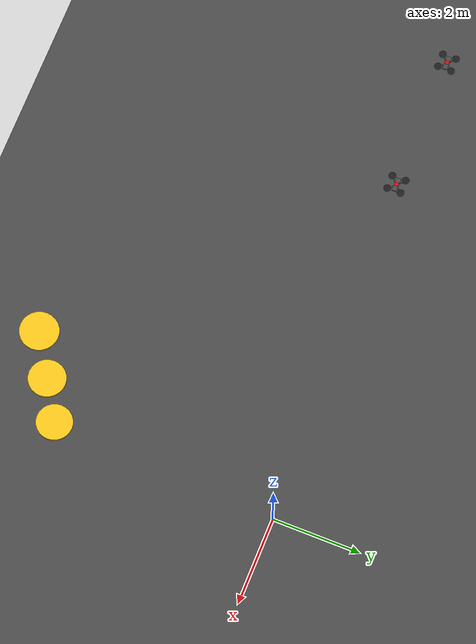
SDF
<sdf version="1.6">
 <world name="formation_comparison_world">
  <model name="ground">
   <static>true</static>
   <link name="link">
    <collision name="collision">
     <geometry><plane><normal>0 0 1</normal><size>100 100</size></plane></geometry>
    </collision>
    <visual name="visual">
     <geometry><plane><normal>0 0 1</normal><size>100 100</size></plane></geometry>
     <material>
      <script><uri>file://media/materials/scripts/gazebo.material</uri><name>Gazebo/Asphalt</name></script>
     </material>
    </visual>
   </link>
  </model>
  <model name="agent_3">
   <pose>-10 0.0 3.0 0 0 0</pose>
   <static>false</static>
   <link name="base_link">
    <inertial><mass>1.5</mass><inertia><ixx>0.03</ixx><iyy>0.03</iyy><izz>0.05</izz></inertia></inertial>
    <visual name="body">
     <geometry><box><size>0.3 0.1 0.05</size></box></geometry>
     <material>
      <script><uri>file://media/materials/scripts/gazebo.material</uri><name>Gazebo/DarkGrey</name></script>
     </material>
    </visual>
    <visual name="arm1">
     <pose>0.1 0.1 0 0 0 0.785</pose>
     <geometry><box><size>0.25 0.02 0.02</size></box></geometry>
     <material>
      <script><uri>file://media/materials/scripts/gazebo.material</uri><name>Gazebo/DarkGrey</name></script>
     </material>
    </visual>
    <visual name="arm2">
     <pose>-0.1 0.1 0 0 0 -0.785</pose>
     <geometry><box><size>0.25 0.02 0.02</size></box></geometry>
     <material>
      <script><uri>file://media/materials/scripts/gazebo.material</uri><name>Gazebo/DarkGrey</name></script>
     </material>
    </visual>
    <visual name="arm3">
     <pose>0.1 -0.1 0 0 0 -0.785</pose>
     <geometry><box><size>0.25 0.02 0.02</size></box></geometry>
     <material>
      <script><uri>file://media/materials/scripts/gazebo.material</uri><name>Gazebo/DarkGrey</name></script>
     </material>
    </visual>
    <visual name="arm4">
     <pose>-0.1 -0.1 0 0 0 0.785</pose>
     <geometry><box><size>0.25 0.02 0.02</size></box></geometry>
     <material>
      <script><uri>file://media/materials/scripts/gazebo.material</uri><name>Gazebo/DarkGrey</name></script>
     </material>
    </visual>
    <visual name="indicator">
     <pose>0 0 0.03 0 0 0</pose>
     <geometry><box><size>0.08 0.08 0.01</size></box></geometry>
     <material><ambient>1 0 0 1</ambient><diffuse>1 0 0 1</diffuse><emissive>1 0 0 1</emissive></material>
    </visual>
    <visual name="prop_fl">
     <pose>0.15 0.15 0.02 0 0 0</pose>
     <geometry><cylinder><radius>0.08</radius><length>0.01</length></cylinder></geometry>
     <material>
      <script><uri>file://media/materials/scripts/gazebo.material</uri><name>Gazebo/Black</name></script>
     </material>
    </visual>
    <visual name="prop_fr">
     <pose>0.15 -0.15 0.02 0 0 0</pose>
     <geometry><cylinder><radius>0.08</radius><length>0.01</length></cylinder></geometry>
     <material>
      <script><uri>file://media/materials/scripts/gazebo.material</uri><name>Gazebo/Black</name></script>
     </material>
    </visual>
    <visual name="prop_rl">
     <pose>-0.15 0.15 0.02 0 0 0</pose>
     <geometry><cylinder><radius>0.08</radius><length>0.01</length></cylinder></geometry>
     <material>
      <script><uri>file://media/materials/scripts/gazebo.material</uri><name>Gazebo/Black</name></script>
     </material>
    </visual>
    <visual name="prop_rr">
     <pose>-0.15 -0.15 0.02 0 0 0</pose>
     <geometry><cylinder><radius>0.08</radius><length>0.01</length></cylinder></geometry>
     <material>
      <script><uri>file://media/materials/scripts/gazebo.material</uri><name>Gazebo/Black</name></script>
     </material>
    </visual>
    <collision name="collision"><geometry><box><size>0.4 0.4 0.1</size></box></geometry></collision>
   </link>
   <plugin name="simple_drone_plugin" filename="libsimple_drone_plugin.so">
    <namespace>agent_3</namespace>
    <target_altitude>3.0</target_altitude>
   </plugin>
  </model>
  <model name="agent_4">
   <pose>-7 0.0 3.0 0 0 0</pose>
   <static>false</static>
   <link name="base_link">
    <inertial><mass>1.5</mass><inertia><ixx>0.03</ixx><iyy>0.03</iyy><izz>0.05</izz></inertia></inertial>
    <visual name="body">
     <geometry><box><size>0.3 0.1 0.05</size></box></geometry>
     <material>
      <script><uri>file://media/materials/scripts/gazebo.material</uri><name>Gazebo/DarkGrey</name></script>
     </material>
    </visual>
    <visual name="arm1">
     <pose>0.1 0.1 0 0 0 0.785</pose>
     <geometry><box><size>0.25 0.02 0.02</size></box></geometry>
     <material>
      <script><uri>file://media/materials/scripts/gazebo.material</uri><name>Gazebo/DarkGrey</name></script>
     </material>
    </visual>
    <visual name="arm2">
     <pose>-0.1 0.1 0 0 0 -0.785</pose>
     <geometry><box><size>0.25 0.02 0.02</size></box></geometry>
     <material>
      <script><uri>file://media/materials/scripts/gazebo.material</uri><name>Gazebo/DarkGrey</name></script>
     </material>
    </visual>
    <visual name="arm3">
     <pose>0.1 -0.1 0 0 0 -0.785</pose>
     <geometry><box><size>0.25 0.02 0.02</size></box></geometry>
     <material>
      <script><uri>file://media/materials/scripts/gazebo.material</uri><name>Gazebo/DarkGrey</name></script>
     </material>
    </visual>
    <visual name="arm4">
     <pose>-0.1 -0.1 0 0 0 0.785</pose>
     <geometry><box><size>0.25 0.02 0.02</size></box></geometry>
     <material>
      <script><uri>file://media/materials/scripts/gazebo.material</uri><name>Gazebo/DarkGrey</name></script>
     </material>
    </visual>
    <visual name="indicator">
     <pose>0 0 0.03 0 0 0</pose>
     <geometry><box><size>0.08 0.08 0.01</size></box></geometry>
     <material><ambient>1 0 0 1</ambient><diffuse>1 0 0 1</diffuse><emissive>1 0 0 1</emissive></material>
    </visual>
    <visual name="prop_fl">
     <pose>0.15 0.15 0.02 0 0 0</pose>
     <geometry><cylinder><radius>0.08</radius><length>0.01</length></cylinder></geometry>
     <material>
      <script><uri>file://media/materials/scripts/gazebo.material</uri><name>Gazebo/Black</name></script>
     </material>
    </visual>
    <visual name="prop_fr">
     <pose>0.15 -0.15 0.02 0 0 0</pose>
     <geometry><cylinder><radius>0.08</radius><length>0.01</length></cylinder></geometry>
     <material>
      <script><uri>file://media/materials/scripts/gazebo.material</uri><name>Gazebo/Black</name></script>
     </material>
    </visual>
    <visual name="prop_rl">
     <pose>-0.15 0.15 0.02 0 0 0</pose>
     <geometry><cylinder><radius>0.08</radius><length>0.01</length></cylinder></geometry>
     <material>
      <script><uri>file://media/materials/scripts/gazebo.material</uri><name>Gazebo/Black</name></script>
     </material>
    </visual>
    <visual name="prop_rr">
     <pose>-0.15 -0.15 0.02 0 0 0</pose>
     <geometry><cylinder><radius>0.08</radius><length>0.01</length></cylinder></geometry>
     <material>
      <script><uri>file://media/materials/scripts/gazebo.material</uri><name>Gazebo/Black</name></script>
     </material>
    </visual>
    <collision name="collision"><geometry><box><size>0.4 0.4 0.1</size></box></geometry></collision>
   </link>
   <plugin name="simple_drone_plugin" filename="libsimple_drone_plugin.so">
    <namespace>agent_4</namespace>
    <target_altitude>3.0</target_altitude>
   </plugin>
  </model>
  <include><uri>model://checkpoint_marker</uri><name>g0_p3</name><pose>0 -5 1.0 0 0 0</pose></include>
  <include><uri>model://checkpoint_marker</uri><name>g1_p3</name><pose>0 -5 4.0 0 0 0</pose></include>
  <include><uri>model://checkpoint_marker</uri><name>g2_p3</name><pose>0 -5 7.0 0 0 0</pose></include>
 </world>
</sdf>
